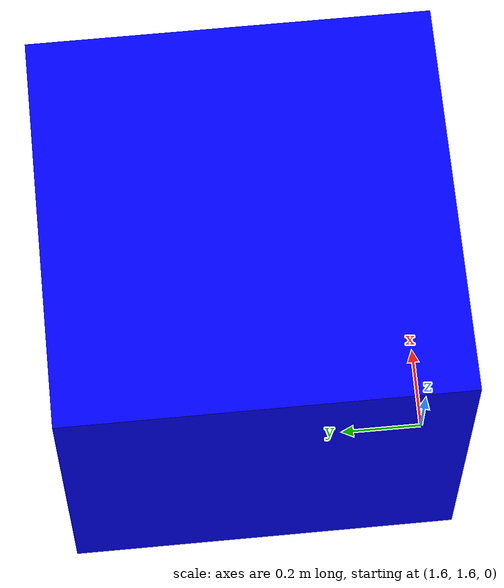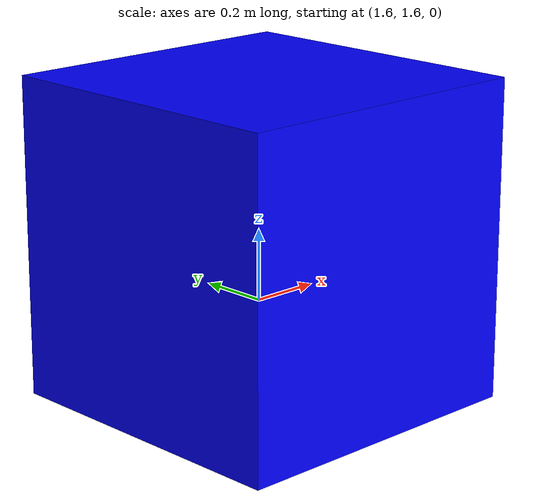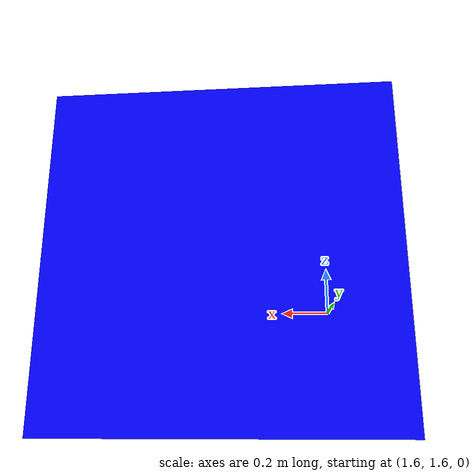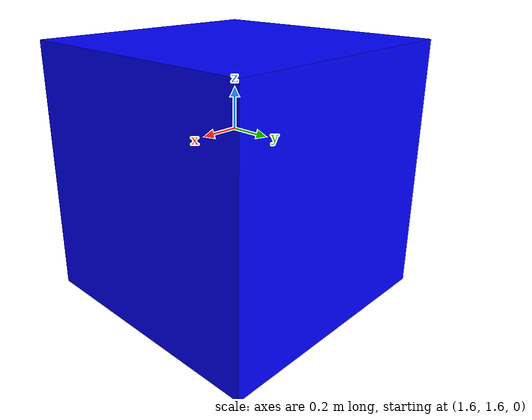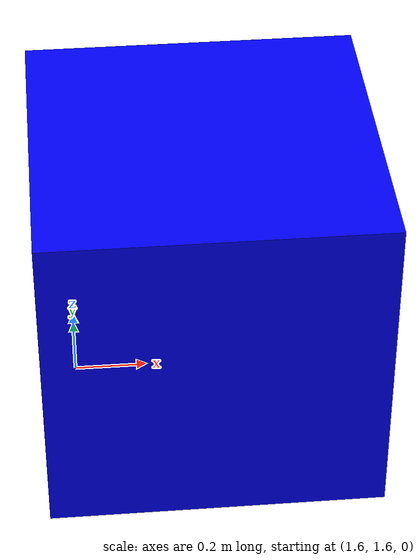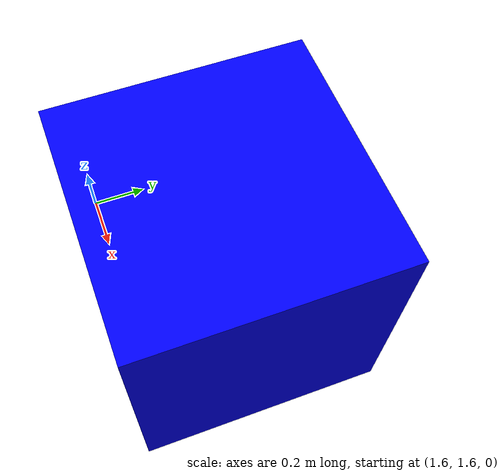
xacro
<?xml version="1.0"?>

<robot xmlns:xacro="http://www.ros.org/wiki/xacro" name="cube" >

  <xacro:property name="pi" value="3.1415926535897931" />

  <!-- This first link called "world" is empty -->
  <link name="world"></link>

  <!-- A simple fixed joint from our empty world link, to our base. -->
  <!-- The base origin is offset from the world origin. -->
  <joint name="base_joint" type="fixed">
    <origin xyz="2 2 0" rpy="0 0 0"/>
    <parent link="world"/>
    <child link="base_link"/>
  </joint>

  <link name="base_link">
    <visual>
      <origin xyz="0 0 0" rpy="0 0 0"/>
      <geometry>
        <box size="1 1 1" />
      </geometry>
      <material name="blue">
        <color rgba="0 0 1 1"/>
      </material>
    </visual>
    <collision>
      <origin xyz="0 0 0" rpy="0 0 0"/>
      <geometry>
        <box size="1 1 1" />
      </geometry>
    </collision>
    <inertial>
      <origin xyz="0 0 0" rpy="0 0 0"/>
      <mass value="1" />
    </inertial>
  </link>
</robot>
